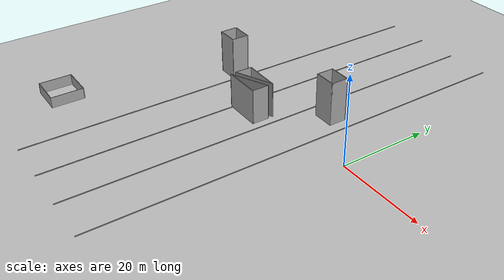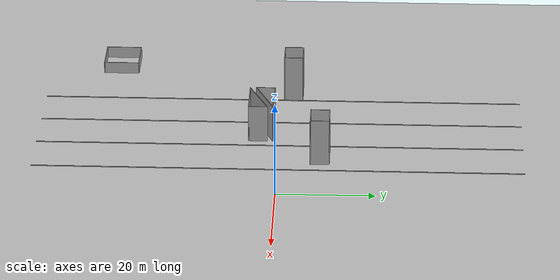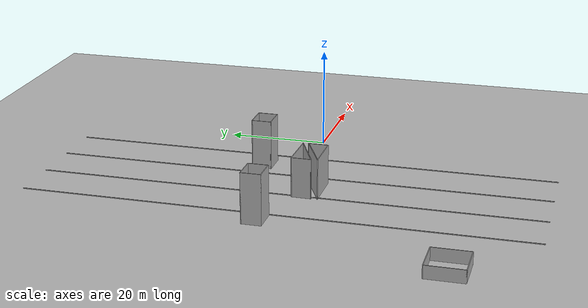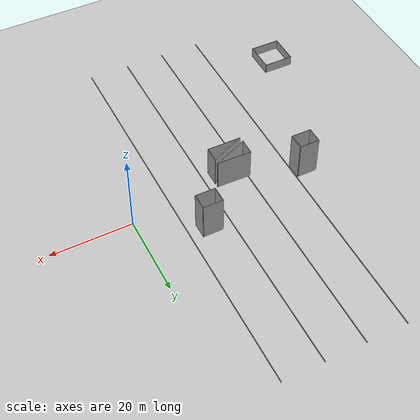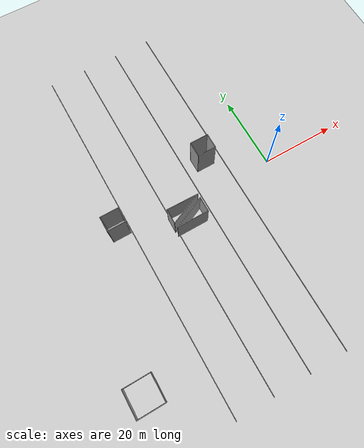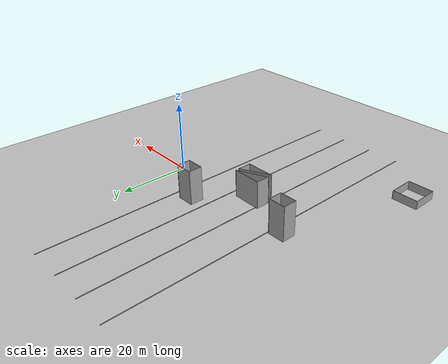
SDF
<sdf version="1.7">
 <world name="default">
  <model name="ground_plane">
   <static>1</static>
   <link name="link">
    <collision name="collision">
     <geometry><plane><normal>0 0 1</normal><size>100 100</size></plane></geometry>
     <surface><friction><ode><mu>100</mu><mu2>50</mu2></ode></friction></surface>
    </collision>
    <visual name="visual">
     <cast_shadows>0</cast_shadows>
     <geometry><plane><normal>0 0 1</normal><size>100 100</size></plane></geometry>
     <material>
      <script><uri>file://media/materials/scripts/gazebo.material</uri><name>Gazebo/Grey</name></script>
     </material>
    </visual>
   </link>
  </model>
  <model name="gridline100m_clone_0_clone_clone_0">
   <link name="Wall_2">
    <pose>2e-06 -3.05812 0 0 -0 1.571</pose>
    <inertial>
     <mass>1</mass>
     <inertia><ixx>1</ixx><ixy>0</ixy><ixz>0</ixz><iyy>1</iyy><iyz>0</iyz><izz>1</izz></inertia>
    </inertial>
    <visual name="Wall_2_Visual">
     <pose>0 0 0.075 0 -0 0</pose>
     <geometry><box><size>100 0.15 0.15</size></box></geometry>
     <material>
      <script><uri>file://media/materials/scripts/gazebo.material</uri><name>Gazebo/Grey</name></script>
      <ambient>0 0 0 1</ambient>
      <shader type="pixel"><normal_map>__default__</normal_map></shader>
      <diffuse>0.7 0.7 0.7 1</diffuse>
      <specular>0.01 0.01 0.01 1</specular>
      <emissive>0 0 0 1</emissive>
     </material>
     <meta><layer>0</layer></meta>
    </visual>
    <collision name="Wall_2_Collision">
     <pose>0 0 0.075 0 -0 0</pose>
     <geometry><box><size>100 0.15 0.15</size></box></geometry>
     <surface>
      <friction>
       <ode><mu>1</mu><mu2>1</mu2><fdir1>0 0 0</fdir1><slip1>0</slip1><slip2>0</slip2></ode>
       <torsional>
        <coefficient>1</coefficient>
        <patch_radius>0</patch_radius>
        <surface_radius>0</surface_radius>
        <use_patch_radius>1</use_patch_radius>
        <ode><slip>0</slip></ode>
       </torsional>
      </friction>
      <bounce><restitution_coefficient>0</restitution_coefficient><threshold>1e+06</threshold></bounce>
      <contact>
       <collide_without_contact>0</collide_without_contact>
       <collide_without_contact_bitmask>1</collide_without_contact_bitmask>
       <collide_bitmask>1</collide_bitmask>
       <ode>
        <soft_cfm>0</soft_cfm>
        <soft_erp>0.2</soft_erp>
        <kp>1e+13</kp>
        <kd>1</kd>
        <max_vel>0.01</max_vel>
        <min_depth>0</min_depth>
       </ode>
       <bullet>
        <split_impulse>1</split_impulse>
        <split_impulse_penetration_threshold>-0.01</split_impulse_penetration_threshold>
        <soft_cfm>0</soft_cfm>
        <soft_erp>0.2</soft_erp>
        <kp>1e+13</kp>
        <kd>1</kd>
       </bullet>
      </contact>
     </surface>
    </collision>
   </link>
   <static>1</static>
   <pose>-9.96377 3.09569 0 0 -0 0</pose>
  </model>
  <model name="gridline100m_clone_0_clone_clone_0_clone">
   <link name="Wall_2">
    <pose>2e-06 -3.05812 0 0 -0 1.571</pose>
    <inertial>
     <mass>1</mass>
     <inertia><ixx>1</ixx><ixy>0</ixy><ixz>0</ixz><iyy>1</iyy><iyz>0</iyz><izz>1</izz></inertia>
    </inertial>
    <visual name="Wall_2_Visual">
     <pose>0 0 0.075 0 -0 0</pose>
     <geometry><box><size>100 0.15 0.15</size></box></geometry>
     <material>
      <script><uri>file://media/materials/scripts/gazebo.material</uri><name>Gazebo/Grey</name></script>
      <ambient>0 0 0 1</ambient>
      <shader type="pixel"><normal_map>__default__</normal_map></shader>
      <diffuse>0.7 0.7 0.7 1</diffuse>
      <specular>0.01 0.01 0.01 1</specular>
      <emissive>0 0 0 1</emissive>
     </material>
     <meta><layer>0</layer></meta>
    </visual>
    <collision name="Wall_2_Collision">
     <pose>0 0 0.075 0 -0 0</pose>
     <geometry><box><size>100 0.15 0.15</size></box></geometry>
     <surface>
      <friction>
       <ode><mu>1</mu><mu2>1</mu2><fdir1>0 0 0</fdir1><slip1>0</slip1><slip2>0</slip2></ode>
       <torsional>
        <coefficient>1</coefficient>
        <patch_radius>0</patch_radius>
        <surface_radius>0</surface_radius>
        <use_patch_radius>1</use_patch_radius>
        <ode><slip>0</slip></ode>
       </torsional>
      </friction>
      <bounce><restitution_coefficient>0</restitution_coefficient><threshold>1e+06</threshold></bounce>
      <contact>
       <collide_without_contact>0</collide_without_contact>
       <collide_without_contact_bitmask>1</collide_without_contact_bitmask>
       <collide_bitmask>1</collide_bitmask>
       <ode>
        <soft_cfm>0</soft_cfm>
        <soft_erp>0.2</soft_erp>
        <kp>1e+13</kp>
        <kd>1</kd>
        <max_vel>0.01</max_vel>
        <min_depth>0</min_depth>
       </ode>
       <bullet>
        <split_impulse>1</split_impulse>
        <split_impulse_penetration_threshold>-0.01</split_impulse_penetration_threshold>
        <soft_cfm>0</soft_cfm>
        <soft_erp>0.2</soft_erp>
        <kp>1e+13</kp>
        <kd>1</kd>
       </bullet>
      </contact>
     </surface>
    </collision>
   </link>
   <static>1</static>
   <pose>-20.0665 3.08574 0 0 -0 0</pose>
  </model>
  <model name="gridline100m_clone_0_clone_clone_0_clone_clone">
   <link name="Wall_2">
    <pose>2e-06 -3.05812 0 0 -0 1.571</pose>
    <inertial>
     <mass>1</mass>
     <inertia><ixx>1</ixx><ixy>0</ixy><ixz>0</ixz><iyy>1</iyy><iyz>0</iyz><izz>1</izz></inertia>
    </inertial>
    <visual name="Wall_2_Visual">
     <pose>0 0 0.075 0 -0 0</pose>
     <geometry><box><size>100 0.15 0.15</size></box></geometry>
     <material>
      <script><uri>file://media/materials/scripts/gazebo.material</uri><name>Gazebo/Grey</name></script>
      <ambient>0 0 0 1</ambient>
      <shader type="pixel"><normal_map>__default__</normal_map></shader>
      <diffuse>0.7 0.7 0.7 1</diffuse>
      <specular>0.01 0.01 0.01 1</specular>
      <emissive>0 0 0 1</emissive>
     </material>
     <meta><layer>0</layer></meta>
    </visual>
    <collision name="Wall_2_Collision">
     <pose>0 0 0.075 0 -0 0</pose>
     <geometry><box><size>100 0.15 0.15</size></box></geometry>
     <surface>
      <friction>
       <ode><mu>1</mu><mu2>1</mu2><fdir1>0 0 0</fdir1><slip1>0</slip1><slip2>0</slip2></ode>
       <torsional>
        <coefficient>1</coefficient>
        <patch_radius>0</patch_radius>
        <surface_radius>0</surface_radius>
        <use_patch_radius>1</use_patch_radius>
        <ode><slip>0</slip></ode>
       </torsional>
      </friction>
      <bounce><restitution_coefficient>0</restitution_coefficient><threshold>1e+06</threshold></bounce>
      <contact>
       <collide_without_contact>0</collide_without_contact>
       <collide_without_contact_bitmask>1</collide_without_contact_bitmask>
       <collide_bitmask>1</collide_bitmask>
       <ode>
        <soft_cfm>0</soft_cfm>
        <soft_erp>0.2</soft_erp>
        <kp>1e+13</kp>
        <kd>1</kd>
        <max_vel>0.01</max_vel>
        <min_depth>0</min_depth>
       </ode>
       <bullet>
        <split_impulse>1</split_impulse>
        <split_impulse_penetration_threshold>-0.01</split_impulse_penetration_threshold>
        <soft_cfm>0</soft_cfm>
        <soft_erp>0.2</soft_erp>
        <kp>1e+13</kp>
        <kd>1</kd>
       </bullet>
      </contact>
     </surface>
    </collision>
   </link>
   <static>1</static>
   <pose>-30.0159 3.12682 0 0 -0 0</pose>
  </model>
  <model name="gridline100m_clone_0_clone_clone_0_clone_clone_clone">
   <link name="Wall_2">
    <pose>2e-06 -3.05812 0 0 -0 1.571</pose>
    <inertial>
     <mass>1</mass>
     <inertia><ixx>1</ixx><ixy>0</ixy><ixz>0</ixz><iyy>1</iyy><iyz>0</iyz><izz>1</izz></inertia>
    </inertial>
    <visual name="Wall_2_Visual">
     <pose>0 0 0.075 0 -0 0</pose>
     <geometry><box><size>100 0.15 0.15</size></box></geometry>
     <material>
      <script><uri>file://media/materials/scripts/gazebo.material</uri><name>Gazebo/Grey</name></script>
      <ambient>0 0 0 1</ambient>
      <shader type="pixel"><normal_map>__default__</normal_map></shader>
      <diffuse>0.7 0.7 0.7 1</diffuse>
      <specular>0.01 0.01 0.01 1</specular>
      <emissive>0 0 0 1</emissive>
     </material>
     <meta><layer>0</layer></meta>
    </visual>
    <collision name="Wall_2_Collision">
     <pose>0 0 0.075 0 -0 0</pose>
     <geometry><box><size>100 0.15 0.15</size></box></geometry>
     <surface>
      <friction>
       <ode><mu>1</mu><mu2>1</mu2><fdir1>0 0 0</fdir1><slip1>0</slip1><slip2>0</slip2></ode>
       <torsional>
        <coefficient>1</coefficient>
        <patch_radius>0</patch_radius>
        <surface_radius>0</surface_radius>
        <use_patch_radius>1</use_patch_radius>
        <ode><slip>0</slip></ode>
       </torsional>
      </friction>
      <bounce><restitution_coefficient>0</restitution_coefficient><threshold>1e+06</threshold></bounce>
      <contact>
       <collide_without_contact>0</collide_without_contact>
       <collide_without_contact_bitmask>1</collide_without_contact_bitmask>
       <collide_bitmask>1</collide_bitmask>
       <ode>
        <soft_cfm>0</soft_cfm>
        <soft_erp>0.2</soft_erp>
        <kp>1e+13</kp>
        <kd>1</kd>
        <max_vel>0.01</max_vel>
        <min_depth>0</min_depth>
       </ode>
       <bullet>
        <split_impulse>1</split_impulse>
        <split_impulse_penetration_threshold>-0.01</split_impulse_penetration_threshold>
        <soft_cfm>0</soft_cfm>
        <soft_erp>0.2</soft_erp>
        <kp>1e+13</kp>
        <kd>1</kd>
       </bullet>
      </contact>
     </surface>
    </collision>
   </link>
   <static>1</static>
   <pose>-40.0496 3.09833 0 0 -0 0</pose>
  </model>
  <model name="building2">
   <link name="Wall_20">
    <pose>4.175 -1.60474 0 0 0 -1.5708</pose>
    <inertial>
     <mass>1</mass>
     <inertia><ixx>1</ixx><ixy>0</ixy><ixz>0</ixz><iyy>1</iyy><iyz>0</iyz><izz>1</izz></inertia>
    </inertial>
    <visual name="Wall_20_Visual">
     <pose>0 0 4 0 -0 0</pose>
     <geometry><box><size>4 0.15 8</size></box></geometry>
     <material>
      <script><uri>file://media/materials/scripts/gazebo.material</uri><name>Gazebo/Grey</name></script>
      <ambient>0.5 0.5 0.5 1</ambient>
      <shader type="pixel"><normal_map>__default__</normal_map></shader>
      <diffuse>0.5 0.5 0.5 1</diffuse>
      <specular>0.5 0.01 0.5 1</specular>
      <emissive>0 0 0 1</emissive>
     </material>
     <meta><layer>0</layer></meta>
    </visual>
    <collision name="Wall_20_Collision">
     <pose>0 0 4 0 -0 0</pose>
     <geometry><box><size>4 0.15 8</size></box></geometry>
     <surface>
      <friction>
       <ode><mu>1</mu><mu2>1</mu2><fdir1>0 0 0</fdir1><slip1>0</slip1><slip2>0</slip2></ode>
       <torsional>
        <coefficient>1</coefficient>
        <patch_radius>0</patch_radius>
        <surface_radius>0</surface_radius>
        <use_patch_radius>1</use_patch_radius>
        <ode><slip>0</slip></ode>
       </torsional>
      </friction>
      <bounce><restitution_coefficient>0</restitution_coefficient><threshold>1e+06</threshold></bounce>
      <contact>
       <collide_without_contact>0</collide_without_contact>
       <collide_without_contact_bitmask>1</collide_without_contact_bitmask>
       <collide_bitmask>1</collide_bitmask>
       <ode>
        <soft_cfm>0</soft_cfm>
        <soft_erp>0.2</soft_erp>
        <kp>1e+13</kp>
        <kd>1</kd>
        <max_vel>0.01</max_vel>
        <min_depth>0</min_depth>
       </ode>
       <bullet>
        <split_impulse>1</split_impulse>
        <split_impulse_penetration_threshold>-0.01</split_impulse_penetration_threshold>
        <soft_cfm>0</soft_cfm>
        <soft_erp>0.2</soft_erp>
        <kp>1e+13</kp>
        <kd>1</kd>
       </bullet>
      </contact>
     </surface>
    </collision>
   </link>
   <link name="Wall_21">
    <pose>0 -3.52974 0 0 -0 3.14159</pose>
    <inertial>
     <mass>1</mass>
     <inertia><ixx>1</ixx><ixy>0</ixy><ixz>0</ixz><iyy>1</iyy><iyz>0</iyz><izz>1</izz></inertia>
    </inertial>
    <visual name="Wall_21_Visual">
     <pose>0 0 4 0 -0 0</pose>
     <geometry><box><size>8.5 0.15 8</size></box></geometry>
     <material>
      <script><uri>file://media/materials/scripts/gazebo.material</uri><name>Gazebo/Grey</name></script>
      <ambient>0.5 0.5 0.5 1</ambient>
      <shader type="pixel"><normal_map>__default__</normal_map></shader>
      <diffuse>0.5 0.5 0.5 1</diffuse>
      <specular>0.5 0.5 0.5 1</specular>
      <emissive>0 0 0 1</emissive>
     </material>
     <meta><layer>0</layer></meta>
    </visual>
    <collision name="Wall_21_Collision">
     <pose>0 0 4 0 -0 0</pose>
     <geometry><box><size>8.5 0.15 8</size></box></geometry>
     <surface>
      <friction>
       <ode><mu>1</mu><mu2>1</mu2><fdir1>0 0 0</fdir1><slip1>0</slip1><slip2>0</slip2></ode>
       <torsional>
        <coefficient>1</coefficient>
        <patch_radius>0</patch_radius>
        <surface_radius>0</surface_radius>
        <use_patch_radius>1</use_patch_radius>
        <ode><slip>0</slip></ode>
       </torsional>
      </friction>
      <bounce><restitution_coefficient>0</restitution_coefficient><threshold>1e+06</threshold></bounce>
      <contact>
       <collide_without_contact>0</collide_without_contact>
       <collide_without_contact_bitmask>1</collide_without_contact_bitmask>
       <collide_bitmask>1</collide_bitmask>
       <ode>
        <soft_cfm>0</soft_cfm>
        <soft_erp>0.2</soft_erp>
        <kp>1e+13</kp>
        <kd>1</kd>
        <max_vel>0.01</max_vel>
        <min_depth>0</min_depth>
       </ode>
       <bullet>
        <split_impulse>1</split_impulse>
        <split_impulse_penetration_threshold>-0.01</split_impulse_penetration_threshold>
        <soft_cfm>0</soft_cfm>
        <soft_erp>0.2</soft_erp>
        <kp>1e+13</kp>
        <kd>1</kd>
       </bullet>
      </contact>
     </surface>
    </collision>
   </link>
   <link name="Wall_24">
    <pose>0 -1.60474 0 0 -0 0.432028</pose>
    <inertial>
     <mass>1</mass>
     <inertia><ixx>1</ixx><ixy>0</ixy><ixz>0</ixz><iyy>1</iyy><iyz>0</iyz><izz>1</izz></inertia>
    </inertial>
    <visual name="Wall_24_Visual">
     <pose>0 0 4 0 -0 0</pose>
     <geometry><box><size>9.34484 0.15 8</size></box></geometry>
     <material>
      <script><uri>file://media/materials/scripts/gazebo.material</uri><name>Gazebo/Grey</name></script>
      <ambient>0.5 0.5 0.5 1</ambient>
      <shader type="pixel"><normal_map>__default__</normal_map></shader>
      <diffuse>0.5 0.5 0.5 1</diffuse>
      <specular>0.5 0.5 0.5 1</specular>
      <emissive>0 0 0 1</emissive>
     </material>
     <meta><layer>0</layer></meta>
    </visual>
    <collision name="Wall_24_Collision">
     <pose>0 0 4 0 -0 0</pose>
     <geometry><box><size>9.34484 0.15 8</size></box></geometry>
     <surface>
      <friction>
       <ode><mu>1</mu><mu2>1</mu2><fdir1>0 0 0</fdir1><slip1>0</slip1><slip2>0</slip2></ode>
       <torsional>
        <coefficient>1</coefficient>
        <patch_radius>0</patch_radius>
        <surface_radius>0</surface_radius>
        <use_patch_radius>1</use_patch_radius>
        <ode><slip>0</slip></ode>
       </torsional>
      </friction>
      <bounce><restitution_coefficient>0</restitution_coefficient><threshold>1e+06</threshold></bounce>
      <contact>
       <collide_without_contact>0</collide_without_contact>
       <collide_without_contact_bitmask>1</collide_without_contact_bitmask>
       <collide_bitmask>1</collide_bitmask>
       <ode>
        <soft_cfm>0</soft_cfm>
        <soft_erp>0.2</soft_erp>
        <kp>1e+13</kp>
        <kd>1</kd>
        <max_vel>0.01</max_vel>
        <min_depth>0</min_depth>
       </ode>
       <bullet>
        <split_impulse>1</split_impulse>
        <split_impulse_penetration_threshold>-0.01</split_impulse_penetration_threshold>
        <soft_cfm>0</soft_cfm>
        <soft_erp>0.2</soft_erp>
        <kp>1e+13</kp>
        <kd>1</kd>
       </bullet>
      </contact>
     </surface>
    </collision>
   </link>
   <static>1</static>
   <pose>-26.2586 -2.76759 0 0 -0 0</pose>
  </model>
  <model name="building2_clone">
   <link name="Wall_20">
    <pose>4.175 -1.60474 0 0 0 -1.5708</pose>
    <inertial>
     <mass>1</mass>
     <inertia><ixx>1</ixx><ixy>0</ixy><ixz>0</ixz><iyy>1</iyy><iyz>0</iyz><izz>1</izz></inertia>
    </inertial>
    <visual name="Wall_20_Visual">
     <pose>0 0 4 0 -0 0</pose>
     <geometry><box><size>4 0.15 8</size></box></geometry>
     <material>
      <script><uri>file://media/materials/scripts/gazebo.material</uri><name>Gazebo/Grey</name></script>
      <ambient>0.5 0.5 0.5 1</ambient>
      <shader type="pixel"><normal_map>__default__</normal_map></shader>
      <diffuse>0.5 0.5 0.5 1</diffuse>
      <specular>0.5 0.01 0.5 1</specular>
      <emissive>0 0 0 1</emissive>
     </material>
     <meta><layer>0</layer></meta>
    </visual>
    <collision name="Wall_20_Collision">
     <pose>0 0 4 0 -0 0</pose>
     <geometry><box><size>4 0.15 8</size></box></geometry>
     <surface>
      <friction>
       <ode><mu>1</mu><mu2>1</mu2><fdir1>0 0 0</fdir1><slip1>0</slip1><slip2>0</slip2></ode>
       <torsional>
        <coefficient>1</coefficient>
        <patch_radius>0</patch_radius>
        <surface_radius>0</surface_radius>
        <use_patch_radius>1</use_patch_radius>
        <ode><slip>0</slip></ode>
       </torsional>
      </friction>
      <bounce><restitution_coefficient>0</restitution_coefficient><threshold>1e+06</threshold></bounce>
      <contact>
       <collide_without_contact>0</collide_without_contact>
       <collide_without_contact_bitmask>1</collide_without_contact_bitmask>
       <collide_bitmask>1</collide_bitmask>
       <ode>
        <soft_cfm>0</soft_cfm>
        <soft_erp>0.2</soft_erp>
        <kp>1e+13</kp>
        <kd>1</kd>
        <max_vel>0.01</max_vel>
        <min_depth>0</min_depth>
       </ode>
       <bullet>
        <split_impulse>1</split_impulse>
        <split_impulse_penetration_threshold>-0.01</split_impulse_penetration_threshold>
        <soft_cfm>0</soft_cfm>
        <soft_erp>0.2</soft_erp>
        <kp>1e+13</kp>
        <kd>1</kd>
       </bullet>
      </contact>
     </surface>
    </collision>
   </link>
   <link name="Wall_21">
    <pose>0 -3.52974 0 0 -0 3.14159</pose>
    <inertial>
     <mass>1</mass>
     <inertia><ixx>1</ixx><ixy>0</ixy><ixz>0</ixz><iyy>1</iyy><iyz>0</iyz><izz>1</izz></inertia>
    </inertial>
    <visual name="Wall_21_Visual">
     <pose>0 0 4 0 -0 0</pose>
     <geometry><box><size>8.5 0.15 8</size></box></geometry>
     <material>
      <script><uri>file://media/materials/scripts/gazebo.material</uri><name>Gazebo/Grey</name></script>
      <ambient>0.5 0.5 0.5 1</ambient>
      <shader type="pixel"><normal_map>__default__</normal_map></shader>
      <diffuse>0.5 0.5 0.5 1</diffuse>
      <specular>0.5 0.5 0.5 1</specular>
      <emissive>0 0 0 1</emissive>
     </material>
     <meta><layer>0</layer></meta>
    </visual>
    <collision name="Wall_21_Collision">
     <pose>0 0 4 0 -0 0</pose>
     <geometry><box><size>8.5 0.15 8</size></box></geometry>
     <surface>
      <friction>
       <ode><mu>1</mu><mu2>1</mu2><fdir1>0 0 0</fdir1><slip1>0</slip1><slip2>0</slip2></ode>
       <torsional>
        <coefficient>1</coefficient>
        <patch_radius>0</patch_radius>
        <surface_radius>0</surface_radius>
        <use_patch_radius>1</use_patch_radius>
        <ode><slip>0</slip></ode>
       </torsional>
      </friction>
      <bounce><restitution_coefficient>0</restitution_coefficient><threshold>1e+06</threshold></bounce>
      <contact>
       <collide_without_contact>0</collide_without_contact>
       <collide_without_contact_bitmask>1</collide_without_contact_bitmask>
       <collide_bitmask>1</collide_bitmask>
       <ode>
        <soft_cfm>0</soft_cfm>
        <soft_erp>0.2</soft_erp>
        <kp>1e+13</kp>
        <kd>1</kd>
        <max_vel>0.01</max_vel>
        <min_depth>0</min_depth>
       </ode>
       <bullet>
        <split_impulse>1</split_impulse>
        <split_impulse_penetration_threshold>-0.01</split_impulse_penetration_threshold>
        <soft_cfm>0</soft_cfm>
        <soft_erp>0.2</soft_erp>
        <kp>1e+13</kp>
        <kd>1</kd>
       </bullet>
      </contact>
     </surface>
    </collision>
   </link>
   <link name="Wall_24">
    <pose>0 -1.60474 0 0 -0 0.432028</pose>
    <inertial>
     <mass>1</mass>
     <inertia><ixx>1</ixx><ixy>0</ixy><ixz>0</ixz><iyy>1</iyy><iyz>0</iyz><izz>1</izz></inertia>
    </inertial>
    <visual name="Wall_24_Visual">
     <pose>0 0 4 0 -0 0</pose>
     <geometry><box><size>9.34484 0.15 8</size></box></geometry>
     <material>
      <script><uri>file://media/materials/scripts/gazebo.material</uri><name>Gazebo/Grey</name></script>
      <ambient>0.5 0.5 0.5 1</ambient>
      <shader type="pixel"><normal_map>__default__</normal_map></shader>
      <diffuse>0.5 0.5 0.5 1</diffuse>
      <specular>0.5 0.5 0.5 1</specular>
      <emissive>0 0 0 1</emissive>
     </material>
     <meta><layer>0</layer></meta>
    </visual>
    <collision name="Wall_24_Collision">
     <pose>0 0 4 0 -0 0</pose>
     <geometry><box><size>9.34484 0.15 8</size></box></geometry>
     <surface>
      <friction>
       <ode><mu>1</mu><mu2>1</mu2><fdir1>0 0 0</fdir1><slip1>0</slip1><slip2>0</slip2></ode>
       <torsional>
        <coefficient>1</coefficient>
        <patch_radius>0</patch_radius>
        <surface_radius>0</surface_radius>
        <use_patch_radius>1</use_patch_radius>
        <ode><slip>0</slip></ode>
       </torsional>
      </friction>
      <bounce><restitution_coefficient>0</restitution_coefficient><threshold>1e+06</threshold></bounce>
      <contact>
       <collide_without_contact>0</collide_without_contact>
       <collide_without_contact_bitmask>1</collide_without_contact_bitmask>
       <collide_bitmask>1</collide_bitmask>
       <ode>
        <soft_cfm>0</soft_cfm>
        <soft_erp>0.2</soft_erp>
        <kp>1e+13</kp>
        <kd>1</kd>
        <max_vel>0.01</max_vel>
        <min_depth>0</min_depth>
       </ode>
       <bullet>
        <split_impulse>1</split_impulse>
        <split_impulse_penetration_threshold>-0.01</split_impulse_penetration_threshold>
        <soft_cfm>0</soft_cfm>
        <soft_erp>0.2</soft_erp>
        <kp>1e+13</kp>
        <kd>1</kd>
       </bullet>
      </contact>
     </surface>
    </collision>
   </link>
   <static>1</static>
   <pose>-26.3885 -4.7985 0 0 -0 3.12153</pose>
  </model>
  <model name="building1_clone_0">
   <link name="Wall_12">
    <pose>-1.19 -3.2645 0 0 -0 0</pose>
    <inertial>
     <mass>1</mass>
     <inertia><ixx>1</ixx><ixy>0</ixy><ixz>0</ixz><iyy>1</iyy><iyz>0</iyz><izz>1</izz></inertia>
    </inertial>
    <visual name="Wall_12_Visual">
     <pose>0 0 5 0 -0 0</pose>
     <geometry><box><size>5 0.15 10</size></box></geometry>
     <material>
      <script><uri>file://media/materials/scripts/gazebo.material</uri><name>Gazebo/Grey</name></script>
      <ambient>0.5 0.5 0.5 1</ambient>
      <shader type="pixel"><normal_map>__default__</normal_map></shader>
      <diffuse>0.5 0.5 0.5 1</diffuse>
      <specular>0.5 0.5 0.5 1</specular>
      <emissive>0 0 0 1</emissive>
     </material>
     <meta><layer>0</layer></meta>
    </visual>
    <collision name="Wall_12_Collision">
     <pose>0 0 5 0 -0 0</pose>
     <geometry><box><size>5 0.15 10</size></box></geometry>
     <surface>
      <friction>
       <ode><mu>1</mu><mu2>1</mu2><fdir1>0 0 0</fdir1><slip1>0</slip1><slip2>0</slip2></ode>
       <torsional>
        <coefficient>1</coefficient>
        <patch_radius>0</patch_radius>
        <surface_radius>0</surface_radius>
        <use_patch_radius>1</use_patch_radius>
        <ode><slip>0</slip></ode>
       </torsional>
      </friction>
      <bounce><restitution_coefficient>0</restitution_coefficient><threshold>1e+06</threshold></bounce>
      <contact>
       <collide_without_contact>0</collide_without_contact>
       <collide_without_contact_bitmask>1</collide_without_contact_bitmask>
       <collide_bitmask>1</collide_bitmask>
       <ode>
        <soft_cfm>0</soft_cfm>
        <soft_erp>0.2</soft_erp>
        <kp>1e+13</kp>
        <kd>1</kd>
        <max_vel>0.01</max_vel>
        <min_depth>0</min_depth>
       </ode>
       <bullet>
        <split_impulse>1</split_impulse>
        <split_impulse_penetration_threshold>-0.01</split_impulse_penetration_threshold>
        <soft_cfm>0</soft_cfm>
        <soft_erp>0.2</soft_erp>
        <kp>1e+13</kp>
        <kd>1</kd>
       </bullet>
      </contact>
     </surface>
    </collision>
   </link>
   <link name="Wall_13">
    <pose>1.235 -1.3395 0 0 -0 1.5708</pose>
    <inertial>
     <mass>1</mass>
     <inertia><ixx>1</ixx><ixy>0</ixy><ixz>0</ixz><iyy>1</iyy><iyz>0</iyz><izz>1</izz></inertia>
    </inertial>
    <visual name="Wall_13_Visual">
     <pose>0 0 5 0 -0 0</pose>
     <geometry><box><size>4 0.15 10</size></box></geometry>
     <material>
      <script><uri>file://media/materials/scripts/gazebo.material</uri><name>Gazebo/Grey</name></script>
      <ambient>0.5 0.5 0.5 1</ambient>
      <shader type="pixel"><normal_map>__default__</normal_map></shader>
      <diffuse>0.5 0.5 0.5 1</diffuse>
      <specular>0.5 0.5 0.5 1</specular>
      <emissive>0 0 0 1</emissive>
     </material>
     <meta><layer>0</layer></meta>
    </visual>
    <collision name="Wall_13_Collision">
     <pose>0 0 5 0 -0 0</pose>
     <geometry><box><size>4 0.15 10</size></box></geometry>
     <surface>
      <friction>
       <ode><mu>1</mu><mu2>1</mu2><fdir1>0 0 0</fdir1><slip1>0</slip1><slip2>0</slip2></ode>
       <torsional>
        <coefficient>1</coefficient>
        <patch_radius>0</patch_radius>
        <surface_radius>0</surface_radius>
        <use_patch_radius>1</use_patch_radius>
        <ode><slip>0</slip></ode>
       </torsional>
      </friction>
      <bounce><restitution_coefficient>0</restitution_coefficient><threshold>1e+06</threshold></bounce>
      <contact>
       <collide_without_contact>0</collide_without_contact>
       <collide_without_contact_bitmask>1</collide_without_contact_bitmask>
       <collide_bitmask>1</collide_bitmask>
       <ode>
        <soft_cfm>0</soft_cfm>
        <soft_erp>0.2</soft_erp>
        <kp>1e+13</kp>
        <kd>1</kd>
        <max_vel>0.01</max_vel>
        <min_depth>0</min_depth>
       </ode>
       <bullet>
        <split_impulse>1</split_impulse>
        <split_impulse_penetration_threshold>-0.01</split_impulse_penetration_threshold>
        <soft_cfm>0</soft_cfm>
        <soft_erp>0.2</soft_erp>
        <kp>1e+13</kp>
        <kd>1</kd>
       </bullet>
      </contact>
     </surface>
    </collision>
   </link>
   <link name="Wall_15">
    <pose>-1.19 0.5855 0 0 -0 3.14159</pose>
    <inertial>
     <mass>1</mass>
     <inertia><ixx>1</ixx><ixy>0</ixy><ixz>0</ixz><iyy>1</iyy><iyz>0</iyz><izz>1</izz></inertia>
    </inertial>
    <visual name="Wall_15_Visual">
     <pose>0 0 5 0 -0 0</pose>
     <geometry><box><size>5 0.15 10</size></box></geometry>
     <material>
      <script><uri>file://media/materials/scripts/gazebo.material</uri><name>Gazebo/Grey</name></script>
      <ambient>0.5 0.5 0.5 1</ambient>
      <shader type="pixel"><normal_map>__default__</normal_map></shader>
      <diffuse>0.5 0.5 0.5 1</diffuse>
      <specular>0.5 0.5 0.5 1</specular>
      <emissive>0 0 0 1</emissive>
     </material>
     <meta><layer>0</layer></meta>
    </visual>
    <collision name="Wall_15_Collision">
     <pose>0 0 5 0 -0 0</pose>
     <geometry><box><size>5 0.15 10</size></box></geometry>
     <surface>
      <friction>
       <ode><mu>1</mu><mu2>1</mu2><fdir1>0 0 0</fdir1><slip1>0</slip1><slip2>0</slip2></ode>
       <torsional>
        <coefficient>1</coefficient>
        <patch_radius>0</patch_radius>
        <surface_radius>0</surface_radius>
        <use_patch_radius>1</use_patch_radius>
        <ode><slip>0</slip></ode>
       </torsional>
      </friction>
      <bounce><restitution_coefficient>0</restitution_coefficient><threshold>1e+06</threshold></bounce>
      <contact>
       <collide_without_contact>0</collide_without_contact>
       <collide_without_contact_bitmask>1</collide_without_contact_bitmask>
       <collide_bitmask>1</collide_bitmask>
       <ode>
        <soft_cfm>0</soft_cfm>
        <soft_erp>0.2</soft_erp>
        <kp>1e+13</kp>
        <kd>1</kd>
        <max_vel>0.01</max_vel>
        <min_depth>0</min_depth>
       </ode>
       <bullet>
        <split_impulse>1</split_impulse>
        <split_impulse_penetration_threshold>-0.01</split_impulse_penetration_threshold>
        <soft_cfm>0</soft_cfm>
        <soft_erp>0.2</soft_erp>
        <kp>1e+13</kp>
        <kd>1</kd>
       </bullet>
      </contact>
     </surface>
    </collision>
   </link>
   <link name="Wall_16">
    <pose>-3.615 -1.3395 0 0 0 -1.5708</pose>
    <inertial>
     <mass>1</mass>
     <inertia><ixx>1</ixx><ixy>0</ixy><ixz>0</ixz><iyy>1</iyy><iyz>0</iyz><izz>1</izz></inertia>
    </inertial>
    <visual name="Wall_16_Visual">
     <pose>0 0 5 0 -0 0</pose>
     <geometry><box><size>4 0.15 10</size></box></geometry>
     <material>
      <script><uri>file://media/materials/scripts/gazebo.material</uri><name>Gazebo/Grey</name></script>
      <ambient>0.5 0.5 0.5 1</ambient>
      <shader type="pixel"><normal_map>__default__</normal_map></shader>
      <diffuse>0.5 0.5 0.5 1</diffuse>
      <specular>0.5 0.5 0.5 1</specular>
      <emissive>0 0 0 1</emissive>
     </material>
     <meta><layer>0</layer></meta>
    </visual>
    <collision name="Wall_16_Collision">
     <pose>0 0 5 0 -0 0</pose>
     <geometry><box><size>4 0.15 10</size></box></geometry>
     <surface>
      <friction>
       <ode><mu>1</mu><mu2>1</mu2><fdir1>0 0 0</fdir1><slip1>0</slip1><slip2>0</slip2></ode>
       <torsional>
        <coefficient>1</coefficient>
        <patch_radius>0</patch_radius>
        <surface_radius>0</surface_radius>
        <use_patch_radius>1</use_patch_radius>
        <ode><slip>0</slip></ode>
       </torsional>
      </friction>
      <bounce><restitution_coefficient>0</restitution_coefficient><threshold>1e+06</threshold></bounce>
      <contact>
       <collide_without_contact>0</collide_without_contact>
       <collide_without_contact_bitmask>1</collide_without_contact_bitmask>
       <collide_bitmask>1</collide_bitmask>
       <ode>
        <soft_cfm>0</soft_cfm>
        <soft_erp>0.2</soft_erp>
        <kp>1e+13</kp>
        <kd>1</kd>
        <max_vel>0.01</max_vel>
        <min_depth>0</min_depth>
       </ode>
       <bullet>
        <split_impulse>1</split_impulse>
        <split_impulse_penetration_threshold>-0.01</split_impulse_penetration_threshold>
        <soft_cfm>0</soft_cfm>
        <soft_erp>0.2</soft_erp>
        <kp>1e+13</kp>
        <kd>1</kd>
       </bullet>
      </contact>
     </surface>
    </collision>
   </link>
   <static>1</static>
   <pose>-13.8041 9.88368 0 0 -0 0</pose>
  </model>
  <model name="building1_clone_0_clone_6">
   <link name="Wall_12">
    <pose>-1.19 -3.2645 0 0 -0 0</pose>
    <inertial>
     <mass>1</mass>
     <inertia><ixx>1</ixx><ixy>0</ixy><ixz>0</ixz><iyy>1</iyy><iyz>0</iyz><izz>1</izz></inertia>
    </inertial>
    <visual name="Wall_12_Visual">
     <pose>0 0 5 0 -0 0</pose>
     <geometry><box><size>5 0.15 10</size></box></geometry>
     <material>
      <script><uri>file://media/materials/scripts/gazebo.material</uri><name>Gazebo/Grey</name></script>
      <ambient>0.5 0.5 0.5 1</ambient>
      <shader type="pixel"><normal_map>__default__</normal_map></shader>
      <diffuse>0.5 0.5 0.5 1</diffuse>
      <specular>0.5 0.5 0.5 1</specular>
      <emissive>0 0 0 1</emissive>
     </material>
     <meta><layer>0</layer></meta>
    </visual>
    <collision name="Wall_12_Collision">
     <pose>0 0 5 0 -0 0</pose>
     <geometry><box><size>5 0.15 10</size></box></geometry>
     <surface>
      <friction>
       <ode><mu>1</mu><mu2>1</mu2><fdir1>0 0 0</fdir1><slip1>0</slip1><slip2>0</slip2></ode>
       <torsional>
        <coefficient>1</coefficient>
        <patch_radius>0</patch_radius>
        <surface_radius>0</surface_radius>
        <use_patch_radius>1</use_patch_radius>
        <ode><slip>0</slip></ode>
       </torsional>
      </friction>
      <bounce><restitution_coefficient>0</restitution_coefficient><threshold>1e+06</threshold></bounce>
      <contact>
       <collide_without_contact>0</collide_without_contact>
       <collide_without_contact_bitmask>1</collide_without_contact_bitmask>
       <collide_bitmask>1</collide_bitmask>
       <ode>
        <soft_cfm>0</soft_cfm>
        <soft_erp>0.2</soft_erp>
        <kp>1e+13</kp>
        <kd>1</kd>
        <max_vel>0.01</max_vel>
        <min_depth>0</min_depth>
       </ode>
       <bullet>
        <split_impulse>1</split_impulse>
        <split_impulse_penetration_threshold>-0.01</split_impulse_penetration_threshold>
        <soft_cfm>0</soft_cfm>
        <soft_erp>0.2</soft_erp>
        <kp>1e+13</kp>
        <kd>1</kd>
       </bullet>
      </contact>
     </surface>
    </collision>
   </link>
   <link name="Wall_13">
    <pose>1.235 -1.3395 0 0 -0 1.5708</pose>
    <inertial>
     <mass>1</mass>
     <inertia><ixx>1</ixx><ixy>0</ixy><ixz>0</ixz><iyy>1</iyy><iyz>0</iyz><izz>1</izz></inertia>
    </inertial>
    <visual name="Wall_13_Visual">
     <pose>0 0 5 0 -0 0</pose>
     <geometry><box><size>4 0.15 10</size></box></geometry>
     <material>
      <script><uri>file://media/materials/scripts/gazebo.material</uri><name>Gazebo/Grey</name></script>
      <ambient>0.5 0.5 0.5 1</ambient>
      <shader type="pixel"><normal_map>__default__</normal_map></shader>
      <diffuse>0.5 0.5 0.5 1</diffuse>
      <specular>0.5 0.5 0.5 1</specular>
      <emissive>0 0 0 1</emissive>
     </material>
     <meta><layer>0</layer></meta>
    </visual>
    <collision name="Wall_13_Collision">
     <pose>0 0 5 0 -0 0</pose>
     <geometry><box><size>4 0.15 10</size></box></geometry>
     <surface>
      <friction>
       <ode><mu>1</mu><mu2>1</mu2><fdir1>0 0 0</fdir1><slip1>0</slip1><slip2>0</slip2></ode>
       <torsional>
        <coefficient>1</coefficient>
        <patch_radius>0</patch_radius>
        <surface_radius>0</surface_radius>
        <use_patch_radius>1</use_patch_radius>
        <ode><slip>0</slip></ode>
       </torsional>
      </friction>
      <bounce><restitution_coefficient>0</restitution_coefficient><threshold>1e+06</threshold></bounce>
      <contact>
       <collide_without_contact>0</collide_without_contact>
       <collide_without_contact_bitmask>1</collide_without_contact_bitmask>
       <collide_bitmask>1</collide_bitmask>
       <ode>
        <soft_cfm>0</soft_cfm>
        <soft_erp>0.2</soft_erp>
        <kp>1e+13</kp>
        <kd>1</kd>
        <max_vel>0.01</max_vel>
        <min_depth>0</min_depth>
       </ode>
       <bullet>
        <split_impulse>1</split_impulse>
        <split_impulse_penetration_threshold>-0.01</split_impulse_penetration_threshold>
        <soft_cfm>0</soft_cfm>
        <soft_erp>0.2</soft_erp>
        <kp>1e+13</kp>
        <kd>1</kd>
       </bullet>
      </contact>
     </surface>
    </collision>
   </link>
   <link name="Wall_15">
    <pose>-1.19 0.5855 0 0 -0 3.14159</pose>
    <inertial>
     <mass>1</mass>
     <inertia><ixx>1</ixx><ixy>0</ixy><ixz>0</ixz><iyy>1</iyy><iyz>0</iyz><izz>1</izz></inertia>
    </inertial>
    <visual name="Wall_15_Visual">
     <pose>0 0 5 0 -0 0</pose>
     <geometry><box><size>5 0.15 10</size></box></geometry>
     <material>
      <script><uri>file://media/materials/scripts/gazebo.material</uri><name>Gazebo/Grey</name></script>
      <ambient>0.5 0.5 0.5 1</ambient>
      <shader type="pixel"><normal_map>__default__</normal_map></shader>
      <diffuse>0.5 0.5 0.5 1</diffuse>
      <specular>0.5 0.5 0.5 1</specular>
      <emissive>0 0 0 1</emissive>
     </material>
     <meta><layer>0</layer></meta>
    </visual>
    <collision name="Wall_15_Collision">
     <pose>0 0 5 0 -0 0</pose>
     <geometry><box><size>5 0.15 10</size></box></geometry>
     <surface>
      <friction>
       <ode><mu>1</mu><mu2>1</mu2><fdir1>0 0 0</fdir1><slip1>0</slip1><slip2>0</slip2></ode>
       <torsional>
        <coefficient>1</coefficient>
        <patch_radius>0</patch_radius>
        <surface_radius>0</surface_radius>
        <use_patch_radius>1</use_patch_radius>
        <ode><slip>0</slip></ode>
       </torsional>
      </friction>
      <bounce><restitution_coefficient>0</restitution_coefficient><threshold>1e+06</threshold></bounce>
      <contact>
       <collide_without_contact>0</collide_without_contact>
       <collide_without_contact_bitmask>1</collide_without_contact_bitmask>
       <collide_bitmask>1</collide_bitmask>
       <ode>
        <soft_cfm>0</soft_cfm>
        <soft_erp>0.2</soft_erp>
        <kp>1e+13</kp>
        <kd>1</kd>
        <max_vel>0.01</max_vel>
        <min_depth>0</min_depth>
       </ode>
       <bullet>
        <split_impulse>1</split_impulse>
        <split_impulse_penetration_threshold>-0.01</split_impulse_penetration_threshold>
        <soft_cfm>0</soft_cfm>
        <soft_erp>0.2</soft_erp>
        <kp>1e+13</kp>
        <kd>1</kd>
       </bullet>
      </contact>
     </surface>
    </collision>
   </link>
   <link name="Wall_16">
    <pose>-3.615 -1.3395 0 0 0 -1.5708</pose>
    <inertial>
     <mass>1</mass>
     <inertia><ixx>1</ixx><ixy>0</ixy><ixz>0</ixz><iyy>1</iyy><iyz>0</iyz><izz>1</izz></inertia>
    </inertial>
    <visual name="Wall_16_Visual">
     <pose>0 0 5 0 -0 0</pose>
     <geometry><box><size>4 0.15 10</size></box></geometry>
     <material>
      <script><uri>file://media/materials/scripts/gazebo.material</uri><name>Gazebo/Grey</name></script>
      <ambient>0.5 0.5 0.5 1</ambient>
      <shader type="pixel"><normal_map>__default__</normal_map></shader>
      <diffuse>0.5 0.5 0.5 1</diffuse>
      <specular>0.5 0.5 0.5 1</specular>
      <emissive>0 0 0 1</emissive>
     </material>
     <meta><layer>0</layer></meta>
    </visual>
    <collision name="Wall_16_Collision">
     <pose>0 0 5 0 -0 0</pose>
     <geometry><box><size>4 0.15 10</size></box></geometry>
     <surface>
      <friction>
       <ode><mu>1</mu><mu2>1</mu2><fdir1>0 0 0</fdir1><slip1>0</slip1><slip2>0</slip2></ode>
       <torsional>
        <coefficient>1</coefficient>
        <patch_radius>0</patch_radius>
        <surface_radius>0</surface_radius>
        <use_patch_radius>1</use_patch_radius>
        <ode><slip>0</slip></ode>
       </torsional>
      </friction>
      <bounce><restitution_coefficient>0</restitution_coefficient><threshold>1e+06</threshold></bounce>
      <contact>
       <collide_without_contact>0</collide_without_contact>
       <collide_without_contact_bitmask>1</collide_without_contact_bitmask>
       <collide_bitmask>1</collide_bitmask>
       <ode>
        <soft_cfm>0</soft_cfm>
        <soft_erp>0.2</soft_erp>
        <kp>1e+13</kp>
        <kd>1</kd>
        <max_vel>0.01</max_vel>
        <min_depth>0</min_depth>
       </ode>
       <bullet>
        <split_impulse>1</split_impulse>
        <split_impulse_penetration_threshold>-0.01</split_impulse_penetration_threshold>
        <soft_cfm>0</soft_cfm>
        <soft_erp>0.2</soft_erp>
        <kp>1e+13</kp>
        <kd>1</kd>
       </bullet>
      </contact>
     </surface>
    </collision>
   </link>
   <static>1</static>
   <pose>-41.6489 3.71605 0 0 -0 0</pose>
  </model>
  <model name="helipadboundary_0">
   <link name="Wall_10">
    <pose>-0.049274 -3.675 0 0 -0 0</pose>
    <inertial>
     <mass>1</mass>
     <inertia><ixx>1</ixx><ixy>0</ixy><ixz>0</ixz><iyy>1</iyy><iyz>0</iyz><izz>1</izz></inertia>
    </inertial>
    <visual name="Wall_10_Visual">
     <pose>0 0 1.25 0 -0 0</pose>
     <geometry><box><size>7.5 0.15 2.5</size></box></geometry>
     <material>
      <script><uri>file://media/materials/scripts/gazebo.material</uri><name>Gazebo/Grey</name></script>
      <ambient>0.5 0.5 0.5 1</ambient>
      <shader type="pixel"><normal_map>__default__</normal_map></shader>
      <diffuse>0.5 0.5 0.5 1</diffuse>
      <specular>0.5 0.5 0.5 1</specular>
      <emissive>0 0 0 1</emissive>
     </material>
     <meta><layer>0</layer></meta>
    </visual>
    <collision name="Wall_10_Collision">
     <pose>0 0 1.25 0 -0 0</pose>
     <geometry><box><size>7.5 0.15 2.5</size></box></geometry>
     <surface>
      <friction>
       <ode><mu>1</mu><mu2>1</mu2><fdir1>0 0 0</fdir1><slip1>0</slip1><slip2>0</slip2></ode>
       <torsional>
        <coefficient>1</coefficient>
        <patch_radius>0</patch_radius>
        <surface_radius>0</surface_radius>
        <use_patch_radius>1</use_patch_radius>
        <ode><slip>0</slip></ode>
       </torsional>
      </friction>
      <bounce><restitution_coefficient>0</restitution_coefficient><threshold>1e+06</threshold></bounce>
      <contact>
       <collide_without_contact>0</collide_without_contact>
       <collide_without_contact_bitmask>1</collide_without_contact_bitmask>
       <collide_bitmask>1</collide_bitmask>
       <ode>
        <soft_cfm>0</soft_cfm>
        <soft_erp>0.2</soft_erp>
        <kp>1e+13</kp>
        <kd>1</kd>
        <max_vel>0.01</max_vel>
        <min_depth>0</min_depth>
       </ode>
       <bullet>
        <split_impulse>1</split_impulse>
        <split_impulse_penetration_threshold>-0.01</split_impulse_penetration_threshold>
        <soft_cfm>0</soft_cfm>
        <soft_erp>0.2</soft_erp>
        <kp>1e+13</kp>
        <kd>1</kd>
       </bullet>
      </contact>
     </surface>
    </collision>
   </link>
   <link name="Wall_12">
    <pose>3.62573 0 0 0 -0 1.5708</pose>
    <inertial>
     <mass>1</mass>
     <inertia><ixx>1</ixx><ixy>0</ixy><ixz>0</ixz><iyy>1</iyy><iyz>0</iyz><izz>1</izz></inertia>
    </inertial>
    <visual name="Wall_12_Visual">
     <pose>0 0 1.25 0 -0 0</pose>
     <geometry><box><size>7.5 0.15 2.5</size></box></geometry>
     <material>
      <script><uri>file://media/materials/scripts/gazebo.material</uri><name>Gazebo/Grey</name></script>
      <ambient>0.5 0.5 0.5 1</ambient>
      <shader type="pixel"><normal_map>__default__</normal_map></shader>
      <diffuse>0.5 0.5 0.5 1</diffuse>
      <specular>0.5 0.5 0.5 1</specular>
      <emissive>0 0 0 1</emissive>
     </material>
     <meta><layer>0</layer></meta>
    </visual>
    <collision name="Wall_12_Collision">
     <pose>0 0 1.25 0 -0 0</pose>
     <geometry><box><size>7.5 0.15 2.5</size></box></geometry>
     <surface>
      <friction>
       <ode><mu>1</mu><mu2>1</mu2><fdir1>0 0 0</fdir1><slip1>0</slip1><slip2>0</slip2></ode>
       <torsional>
        <coefficient>1</coefficient>
        <patch_radius>0</patch_radius>
        <surface_radius>0</surface_radius>
        <use_patch_radius>1</use_patch_radius>
        <ode><slip>0</slip></ode>
       </torsional>
      </friction>
      <bounce><restitution_coefficient>0</restitution_coefficient><threshold>1e+06</threshold></bounce>
      <contact>
       <collide_without_contact>0</collide_without_contact>
       <collide_without_contact_bitmask>1</collide_without_contact_bitmask>
       <collide_bitmask>1</collide_bitmask>
       <ode>
        <soft_cfm>0</soft_cfm>
        <soft_erp>0.2</soft_erp>
        <kp>1e+13</kp>
        <kd>1</kd>
        <max_vel>0.01</max_vel>
        <min_depth>0</min_depth>
       </ode>
       <bullet>
        <split_impulse>1</split_impulse>
        <split_impulse_penetration_threshold>-0.01</split_impulse_penetration_threshold>
        <soft_cfm>0</soft_cfm>
        <soft_erp>0.2</soft_erp>
        <kp>1e+13</kp>
        <kd>1</kd>
       </bullet>
      </contact>
     </surface>
    </collision>
   </link>
   <link name="Wall_13">
    <pose>-0.049274 3.675 0 0 -0 3.14159</pose>
    <inertial>
     <mass>1</mass>
     <inertia><ixx>1</ixx><ixy>0</ixy><ixz>0</ixz><iyy>1</iyy><iyz>0</iyz><izz>1</izz></inertia>
    </inertial>
    <visual name="Wall_13_Visual">
     <pose>0 0 1.25 0 -0 0</pose>
     <geometry><box><size>7.5 0.15 2.5</size></box></geometry>
     <material>
      <script><uri>file://media/materials/scripts/gazebo.material</uri><name>Gazebo/Grey</name></script>
      <ambient>0.5 0.5 0.5 1</ambient>
      <shader type="pixel"><normal_map>__default__</normal_map></shader>
      <diffuse>0.5 0.5 0.5 1</diffuse>
      <specular>0.5 0.5 0.5 1</specular>
      <emissive>0 0 0 1</emissive>
     </material>
     <meta><layer>0</layer></meta>
    </visual>
    <collision name="Wall_13_Collision">
     <pose>0 0 1.25 0 -0 0</pose>
     <geometry><box><size>7.5 0.15 2.5</size></box></geometry>
     <surface>
      <friction>
       <ode><mu>1</mu><mu2>1</mu2><fdir1>0 0 0</fdir1><slip1>0</slip1><slip2>0</slip2></ode>
       <torsional>
        <coefficient>1</coefficient>
        <patch_radius>0</patch_radius>
        <surface_radius>0</surface_radius>
        <use_patch_radius>1</use_patch_radius>
        <ode><slip>0</slip></ode>
       </torsional>
      </friction>
      <bounce><restitution_coefficient>0</restitution_coefficient><threshold>1e+06</threshold></bounce>
      <contact>
       <collide_without_contact>0</collide_without_contact>
       <collide_without_contact_bitmask>1</collide_without_contact_bitmask>
       <collide_bitmask>1</collide_bitmask>
       <ode>
        <soft_cfm>0</soft_cfm>
        <soft_erp>0.2</soft_erp>
        <kp>1e+13</kp>
        <kd>1</kd>
        <max_vel>0.01</max_vel>
        <min_depth>0</min_depth>
       </ode>
       <bullet>
        <split_impulse>1</split_impulse>
        <split_impulse_penetration_threshold>-0.01</split_impulse_penetration_threshold>
        <soft_cfm>0</soft_cfm>
        <soft_erp>0.2</soft_erp>
        <kp>1e+13</kp>
        <kd>1</kd>
       </bullet>
      </contact>
     </surface>
    </collision>
   </link>
   <link name="Wall_14">
    <pose>-3.72427 0 0 0 0 -1.5708</pose>
    <inertial>
     <mass>1</mass>
     <inertia><ixx>1</ixx><ixy>0</ixy><ixz>0</ixz><iyy>1</iyy><iyz>0</iyz><izz>1</izz></inertia>
    </inertial>
    <visual name="Wall_14_Visual">
     <pose>0 0 1.25 0 -0 0</pose>
     <geometry><box><size>7.5 0.15 2.5</size></box></geometry>
     <material>
      <script><uri>file://media/materials/scripts/gazebo.material</uri><name>Gazebo/Grey</name></script>
      <ambient>0.5 0.5 0.5 1</ambient>
      <shader type="pixel"><normal_map>__default__</normal_map></shader>
      <diffuse>0.5 0.5 0.5 1</diffuse>
      <specular>0.5 0.5 0.5 1</specular>
      <emissive>0 0 0 1</emissive>
     </material>
     <meta><layer>0</layer></meta>
    </visual>
    <collision name="Wall_14_Collision">
     <pose>0 0 1.25 0 -0 0</pose>
     <geometry><box><size>7.5 0.15 2.5</size></box></geometry>
     <surface>
      <friction>
       <ode><mu>1</mu><mu2>1</mu2><fdir1>0 0 0</fdir1><slip1>0</slip1><slip2>0</slip2></ode>
       <torsional>
        <coefficient>1</coefficient>
        <patch_radius>0</patch_radius>
        <surface_radius>0</surface_radius>
        <use_patch_radius>1</use_patch_radius>
        <ode><slip>0</slip></ode>
       </torsional>
      </friction>
      <bounce><restitution_coefficient>0</restitution_coefficient><threshold>1e+06</threshold></bounce>
      <contact>
       <collide_without_contact>0</collide_without_contact>
       <collide_without_contact_bitmask>1</collide_without_contact_bitmask>
       <collide_bitmask>1</collide_bitmask>
       <ode>
        <soft_cfm>0</soft_cfm>
        <soft_erp>0.2</soft_erp>
        <kp>1e+13</kp>
        <kd>1</kd>
        <max_vel>0.01</max_vel>
        <min_depth>0</min_depth>
       </ode>
       <bullet>
        <split_impulse>1</split_impulse>
        <split_impulse_penetration_threshold>-0.01</split_impulse_penetration_threshold>
        <soft_cfm>0</soft_cfm>
        <soft_erp>0.2</soft_erp>
        <kp>1e+13</kp>
        <kd>1</kd>
       </bullet>
      </contact>
     </surface>
    </collision>
   </link>
   <static>1</static>
   <pose>-55.186 -35.033 0 0 -0 0</pose>
  </model>
 </world>
</sdf>
